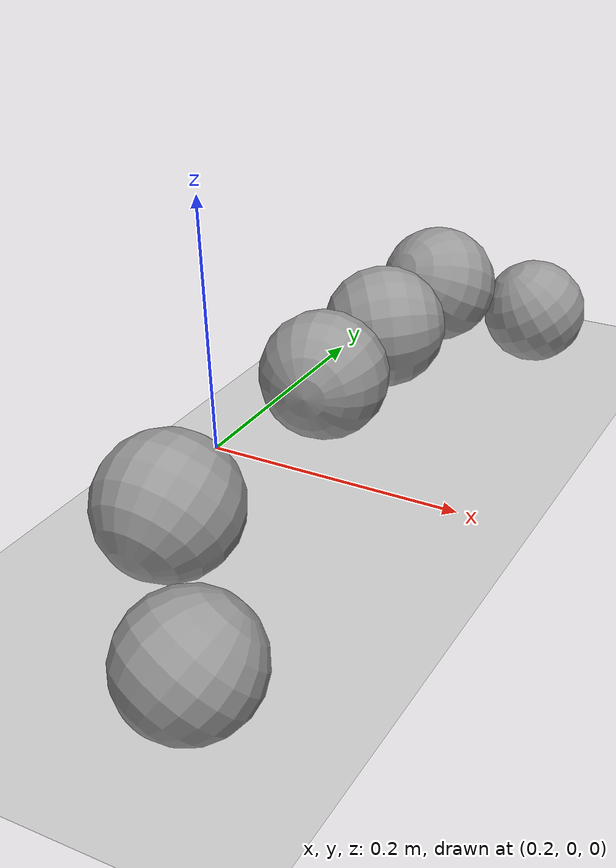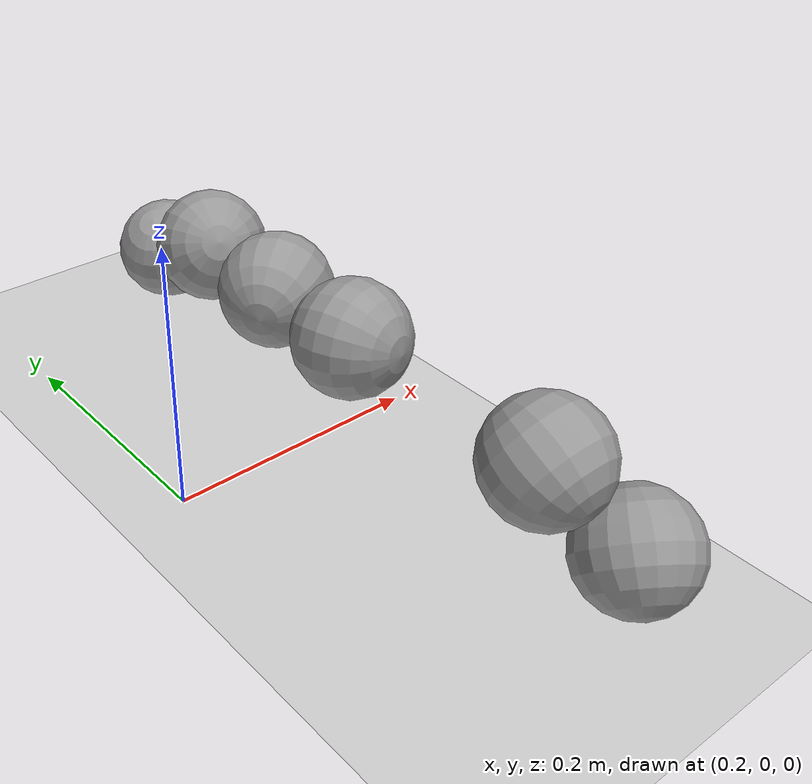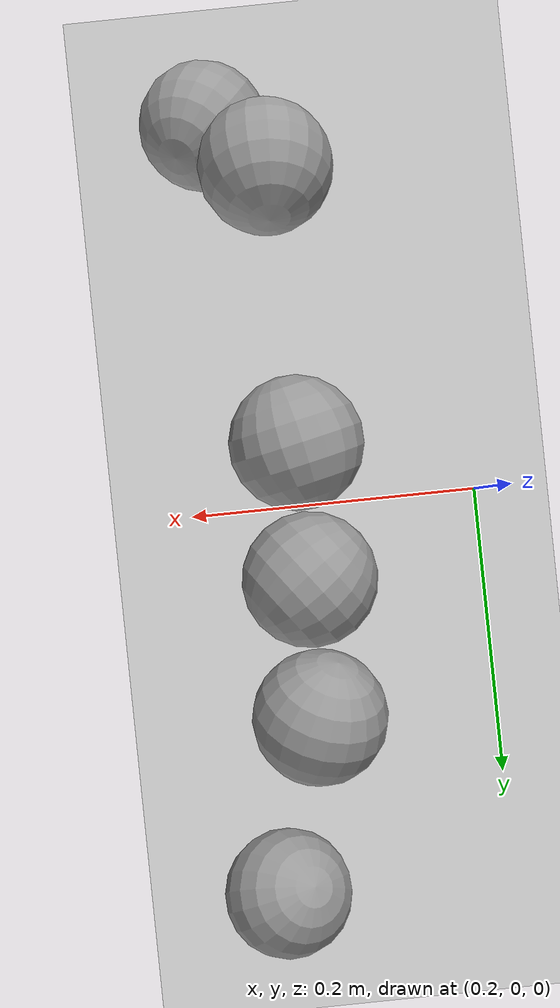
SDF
<sdf version="1.6">
 <world name="default">
  <model name="ground_plane">
   <static>1</static>
   <link name="link">
    <collision name="collision">
     <geometry><plane><normal>0 0 1</normal><size>100 100</size></plane></geometry>
     <surface>
      <contact><collide_bitmask>65535</collide_bitmask></contact>
      <friction><ode><mu>100</mu><mu2>50</mu2></ode></friction>
     </surface>
    </collision>
    <visual name="visual">
     <cast_shadows>0</cast_shadows>
     <geometry><plane><normal>0 0 1</normal><size>100 100</size></plane></geometry>
     <material>
      <script><uri>file://media/materials/scripts/gazebo.material</uri><name>Gazebo/Grey</name></script>
     </material>
    </visual>
   </link>
  </model>
  <model name="unit_sphere_clone_2_clone_2_clone_3_clone_clone_clone_0_clone_clone_clone_clone">
   <link name="link">
    <inertial>
     <mass>0.000642099</mass>
     <inertia>
      <ixx>4.77879e-07</ixx>
      <ixy>0</ixy>
      <ixz>0</ixz>
      <iyy>4.77879e-07</iyy>
      <iyz>0</iyz>
      <izz>4.77879e-07</izz>
     </inertia>
    </inertial>
    <visual name="visual">
     <geometry><sphere><radius>0.0431354</radius></sphere></geometry>
     <material>
      <script><name>Gazebo/Grey</name><uri>file://media/materials/scripts/gazebo.material</uri></script>
      <shader type="pixel"/>
      <ambient>0.3 0.3 0.3 1</ambient>
      <diffuse>0.7 0.7 0.7 1</diffuse>
      <specular>0.01 0.01 0.01 1</specular>
      <emissive>0 0 0 1</emissive>
     </material>
    </visual>
    <collision name="collision">
     <geometry><sphere><radius>0.043135</radius></sphere></geometry>
     <surface>
      <friction>
       <ode><mu>1</mu><mu2>1</mu2><fdir1>0 0 0</fdir1><slip1>0</slip1><slip2>0</slip2></ode>
       <torsional>
        <coefficient>1</coefficient>
        <patch_radius>0</patch_radius>
        <surface_radius>0</surface_radius>
        <use_patch_radius>1</use_patch_radius>
        <ode><slip>0</slip></ode>
       </torsional>
      </friction>
      <bounce><restitution_coefficient>0</restitution_coefficient><threshold>1e+06</threshold></bounce>
      <contact>
       <collide_without_contact>0</collide_without_contact>
       <collide_without_contact_bitmask>1</collide_without_contact_bitmask>
       <collide_bitmask>1</collide_bitmask>
       <ode>
        <soft_cfm>0</soft_cfm>
        <soft_erp>0.2</soft_erp>
        <kp>1e+13</kp>
        <kd>1</kd>
        <max_vel>0.01</max_vel>
        <min_depth>0</min_depth>
       </ode>
       <bullet>
        <split_impulse>1</split_impulse>
        <split_impulse_penetration_threshold>-0.01</split_impulse_penetration_threshold>
        <soft_cfm>0</soft_cfm>
        <soft_erp>0.2</soft_erp>
        <kp>1e+13</kp>
        <kd>1</kd>
       </bullet>
      </contact>
     </surface>
    </collision>
   </link>
   <static>0</static>
   <pose>0.361612 -0.261033 0.045988 -2.29451 -0.19091 2.71243</pose>
  </model>
  <model name="unit_sphere_clone_4_clone_1_clone_1">
   <link name="link">
    <inertial>
     <mass>0.000642099</mass>
     <inertia>
      <ixx>4.77879e-07</ixx>
      <ixy>0</ixy>
      <ixz>0</ixz>
      <iyy>4.77879e-07</iyy>
      <iyz>0</iyz>
      <izz>4.77879e-07</izz>
     </inertia>
    </inertial>
    <visual name="visual">
     <geometry><sphere><radius>0.0431354</radius></sphere></geometry>
     <material>
      <script><name>Gazebo/Grey</name><uri>file://media/materials/scripts/gazebo.material</uri></script>
      <shader type="pixel"/>
      <ambient>0.3 0.3 0.3 1</ambient>
      <diffuse>0.7 0.7 0.7 1</diffuse>
      <specular>0.01 0.01 0.01 1</specular>
      <emissive>0 0 0 1</emissive>
     </material>
    </visual>
    <collision name="collision">
     <geometry><sphere><radius>0.043135</radius></sphere></geometry>
     <surface>
      <friction>
       <ode><mu>1</mu><mu2>1</mu2><fdir1>0 0 0</fdir1><slip1>0</slip1><slip2>0</slip2></ode>
       <torsional>
        <coefficient>1</coefficient>
        <patch_radius>0</patch_radius>
        <surface_radius>0</surface_radius>
        <use_patch_radius>1</use_patch_radius>
        <ode><slip>0</slip></ode>
       </torsional>
      </friction>
      <bounce><restitution_coefficient>0</restitution_coefficient><threshold>1e+06</threshold></bounce>
      <contact>
       <collide_without_contact>0</collide_without_contact>
       <collide_without_contact_bitmask>1</collide_without_contact_bitmask>
       <collide_bitmask>1</collide_bitmask>
       <ode>
        <soft_cfm>0</soft_cfm>
        <soft_erp>0.2</soft_erp>
        <kp>1e+13</kp>
        <kd>1</kd>
        <max_vel>0.01</max_vel>
        <min_depth>0</min_depth>
       </ode>
       <bullet>
        <split_impulse>1</split_impulse>
        <split_impulse_penetration_threshold>-0.01</split_impulse_penetration_threshold>
        <soft_cfm>0</soft_cfm>
        <soft_erp>0.2</soft_erp>
        <kp>1e+13</kp>
        <kd>1</kd>
       </bullet>
      </contact>
     </surface>
    </collision>
   </link>
   <static>0</static>
   <pose>0.31989 -0.039659 0.107454 -1.27759 1.33711 -2.64391</pose>
  </model>
  <model name="unit_sphere_clone_4_clone_1_clone_3_clone_clone_clone_clone">
   <link name="link">
    <inertial>
     <mass>0.000642099</mass>
     <inertia>
      <ixx>4.77879e-07</ixx>
      <ixy>0</ixy>
      <ixz>0</ixz>
      <iyy>4.77879e-07</iyy>
      <iyz>0</iyz>
      <izz>4.77879e-07</izz>
     </inertia>
    </inertial>
    <visual name="visual">
     <geometry><sphere><radius>0.0431354</radius></sphere></geometry>
     <material>
      <script><name>Gazebo/Grey</name><uri>file://media/materials/scripts/gazebo.material</uri></script>
      <shader type="pixel"/>
      <ambient>0.3 0.3 0.3 1</ambient>
      <diffuse>0.7 0.7 0.7 1</diffuse>
      <specular>0.01 0.01 0.01 1</specular>
      <emissive>0 0 0 1</emissive>
     </material>
    </visual>
    <collision name="collision">
     <geometry><sphere><radius>0.043135</radius></sphere></geometry>
     <surface>
      <friction>
       <ode><mu>1</mu><mu2>1</mu2><fdir1>0 0 0</fdir1><slip1>0</slip1><slip2>0</slip2></ode>
       <torsional>
        <coefficient>1</coefficient>
        <patch_radius>0</patch_radius>
        <surface_radius>0</surface_radius>
        <use_patch_radius>1</use_patch_radius>
        <ode><slip>0</slip></ode>
       </torsional>
      </friction>
      <bounce><restitution_coefficient>0</restitution_coefficient><threshold>1e+06</threshold></bounce>
      <contact>
       <collide_without_contact>0</collide_without_contact>
       <collide_without_contact_bitmask>1</collide_without_contact_bitmask>
       <collide_bitmask>1</collide_bitmask>
       <ode>
        <soft_cfm>0</soft_cfm>
        <soft_erp>0.2</soft_erp>
        <kp>1e+13</kp>
        <kd>1</kd>
        <max_vel>0.01</max_vel>
        <min_depth>0</min_depth>
       </ode>
       <bullet>
        <split_impulse>1</split_impulse>
        <split_impulse_penetration_threshold>-0.01</split_impulse_penetration_threshold>
        <soft_cfm>0</soft_cfm>
        <soft_erp>0.2</soft_erp>
        <kp>1e+13</kp>
        <kd>1</kd>
       </bullet>
      </contact>
     </surface>
    </collision>
   </link>
   <static>0</static>
   <pose>0.321822 -0.215004 0.107202 2.35889 -0.895528 -0.670992</pose>
  </model>
  <model name="unit_sphere_clone_4_clone_1_clone_3_clone_2_clone_3_clone">
   <link name="link">
    <inertial>
     <mass>0.000642099</mass>
     <inertia>
      <ixx>4.77879e-07</ixx>
      <ixy>0</ixy>
      <ixz>0</ixz>
      <iyy>4.77879e-07</iyy>
      <iyz>0</iyz>
      <izz>4.77879e-07</izz>
     </inertia>
    </inertial>
    <visual name="visual">
     <geometry><sphere><radius>0.0431354</radius></sphere></geometry>
     <material>
      <script><name>Gazebo/Grey</name><uri>file://media/materials/scripts/gazebo.material</uri></script>
      <shader type="pixel"/>
      <ambient>0.3 0.3 0.3 1</ambient>
      <diffuse>0.7 0.7 0.7 1</diffuse>
      <specular>0.01 0.01 0.01 1</specular>
      <emissive>0 0 0 1</emissive>
     </material>
    </visual>
    <collision name="collision">
     <geometry><sphere><radius>0.043135</radius></sphere></geometry>
     <surface>
      <friction>
       <ode><mu>1</mu><mu2>1</mu2><fdir1>0 0 0</fdir1><slip1>0</slip1><slip2>0</slip2></ode>
       <torsional>
        <coefficient>1</coefficient>
        <patch_radius>0</patch_radius>
        <surface_radius>0</surface_radius>
        <use_patch_radius>1</use_patch_radius>
        <ode><slip>0</slip></ode>
       </torsional>
      </friction>
      <bounce><restitution_coefficient>0</restitution_coefficient><threshold>1e+06</threshold></bounce>
      <contact>
       <collide_without_contact>0</collide_without_contact>
       <collide_without_contact_bitmask>1</collide_without_contact_bitmask>
       <collide_bitmask>1</collide_bitmask>
       <ode>
        <soft_cfm>0</soft_cfm>
        <soft_erp>0.2</soft_erp>
        <kp>1e+13</kp>
        <kd>1</kd>
        <max_vel>0.01</max_vel>
        <min_depth>0</min_depth>
       </ode>
       <bullet>
        <split_impulse>1</split_impulse>
        <split_impulse_penetration_threshold>-0.01</split_impulse_penetration_threshold>
        <soft_cfm>0</soft_cfm>
        <soft_erp>0.2</soft_erp>
        <kp>1e+13</kp>
        <kd>1</kd>
       </bullet>
      </contact>
     </surface>
    </collision>
   </link>
   <static>0</static>
   <pose>0.356754 0.259008 0.043135 2.58761 -0.028223 2.05834</pose>
  </model>
  <model name="unit_sphere_clone_4_clone_1_clone_3_clone_1_clone_clone_0_clone_clone_0_clone_clone_clone">
   <link name="link">
    <inertial>
     <mass>0.000642099</mass>
     <inertia>
      <ixx>4.77879e-07</ixx>
      <ixy>0</ixy>
      <ixz>0</ixz>
      <iyy>4.77879e-07</iyy>
      <iyz>0</iyz>
      <izz>4.77879e-07</izz>
     </inertia>
    </inertial>
    <visual name="visual">
     <geometry><sphere><radius>0.0431354</radius></sphere></geometry>
     <material>
      <script><name>Gazebo/Grey</name><uri>file://media/materials/scripts/gazebo.material</uri></script>
      <shader type="pixel"/>
      <ambient>0.3 0.3 0.3 1</ambient>
      <diffuse>0.7 0.7 0.7 1</diffuse>
      <specular>0.01 0.01 0.01 1</specular>
      <emissive>0 0 0 1</emissive>
     </material>
    </visual>
    <collision name="collision">
     <geometry><sphere><radius>0.043135</radius></sphere></geometry>
     <surface>
      <friction>
       <ode><mu>1</mu><mu2>1</mu2><fdir1>0 0 0</fdir1><slip1>0</slip1><slip2>0</slip2></ode>
       <torsional>
        <coefficient>1</coefficient>
        <patch_radius>0</patch_radius>
        <surface_radius>0</surface_radius>
        <use_patch_radius>1</use_patch_radius>
        <ode><slip>0</slip></ode>
       </torsional>
      </friction>
      <bounce><restitution_coefficient>0</restitution_coefficient><threshold>1e+06</threshold></bounce>
      <contact>
       <collide_without_contact>0</collide_without_contact>
       <collide_without_contact_bitmask>1</collide_without_contact_bitmask>
       <collide_bitmask>1</collide_bitmask>
       <ode>
        <soft_cfm>0</soft_cfm>
        <soft_erp>0.2</soft_erp>
        <kp>1e+13</kp>
        <kd>1</kd>
        <max_vel>0.01</max_vel>
        <min_depth>0</min_depth>
       </ode>
       <bullet>
        <split_impulse>1</split_impulse>
        <split_impulse_penetration_threshold>-0.01</split_impulse_penetration_threshold>
        <soft_cfm>0</soft_cfm>
        <soft_erp>0.2</soft_erp>
        <kp>1e+13</kp>
        <kd>1</kd>
       </bullet>
      </contact>
     </surface>
    </collision>
   </link>
   <static>0</static>
   <pose>0.320265 0.046715 0.107383 1.62665 0.386356 -0.910126</pose>
  </model>
  <model name="unit_sphere_clone_4_clone_1_clone_3_clone_1_clone_clone_0_clone_clone_0_clone_clone_clone_0_clone_1">
   <link name="link">
    <inertial>
     <mass>0.000642099</mass>
     <inertia>
      <ixx>4.77879e-07</ixx>
      <ixy>0</ixy>
      <ixz>0</ixz>
      <iyy>4.77879e-07</iyy>
      <iyz>0</iyz>
      <izz>4.77879e-07</izz>
     </inertia>
    </inertial>
    <visual name="visual">
     <geometry><sphere><radius>0.0431354</radius></sphere></geometry>
     <material>
      <script><name>Gazebo/Grey</name><uri>file://media/materials/scripts/gazebo.material</uri></script>
      <shader type="pixel"/>
      <ambient>0.3 0.3 0.3 1</ambient>
      <diffuse>0.7 0.7 0.7 1</diffuse>
      <specular>0.01 0.01 0.01 1</specular>
      <emissive>0 0 0 1</emissive>
     </material>
    </visual>
    <collision name="collision">
     <geometry><sphere><radius>0.043135</radius></sphere></geometry>
     <surface>
      <friction>
       <ode><mu>1</mu><mu2>1</mu2><fdir1>0 0 0</fdir1><slip1>0</slip1><slip2>0</slip2></ode>
       <torsional>
        <coefficient>1</coefficient>
        <patch_radius>0</patch_radius>
        <surface_radius>0</surface_radius>
        <use_patch_radius>1</use_patch_radius>
        <ode><slip>0</slip></ode>
       </torsional>
      </friction>
      <bounce><restitution_coefficient>0</restitution_coefficient><threshold>1e+06</threshold></bounce>
      <contact>
       <collide_without_contact>0</collide_without_contact>
       <collide_without_contact_bitmask>1</collide_without_contact_bitmask>
       <collide_bitmask>1</collide_bitmask>
       <ode>
        <soft_cfm>0</soft_cfm>
        <soft_erp>0.2</soft_erp>
        <kp>1e+13</kp>
        <kd>1</kd>
        <max_vel>0.01</max_vel>
        <min_depth>0</min_depth>
       </ode>
       <bullet>
        <split_impulse>1</split_impulse>
        <split_impulse_penetration_threshold>-0.01</split_impulse_penetration_threshold>
        <soft_cfm>0</soft_cfm>
        <soft_erp>0.2</soft_erp>
        <kp>1e+13</kp>
        <kd>1</kd>
       </bullet>
      </contact>
     </surface>
    </collision>
   </link>
   <static>0</static>
   <pose>0.322608 0.133818 0.108013 2.06668 -0.099186 2.68093</pose>
  </model>
 </world>
</sdf>
